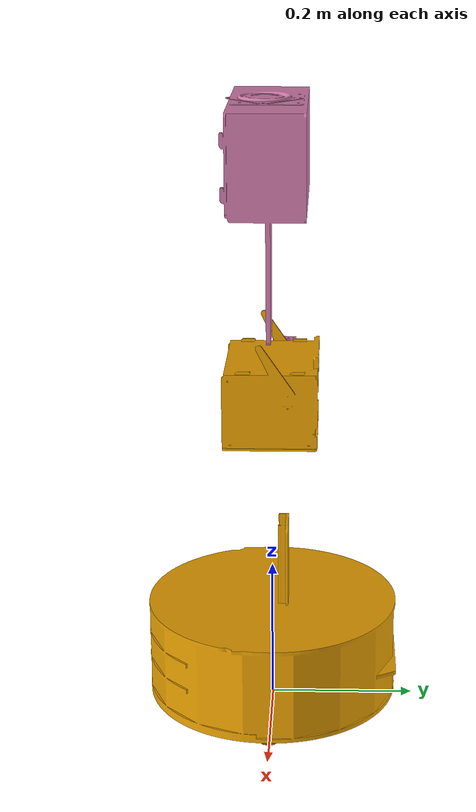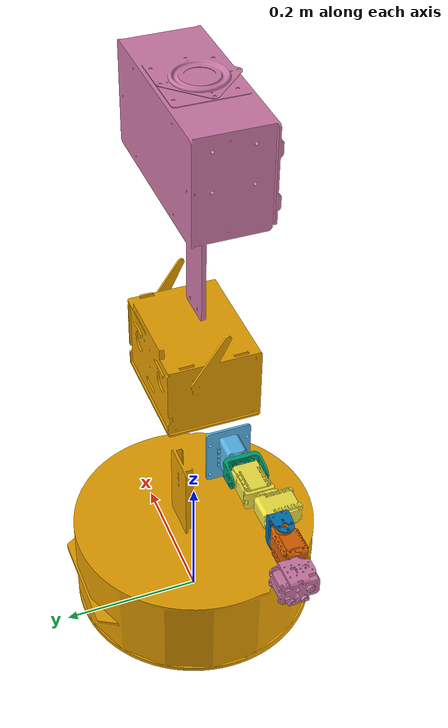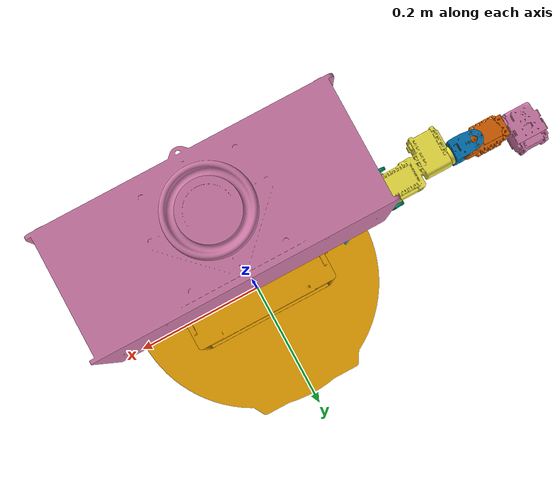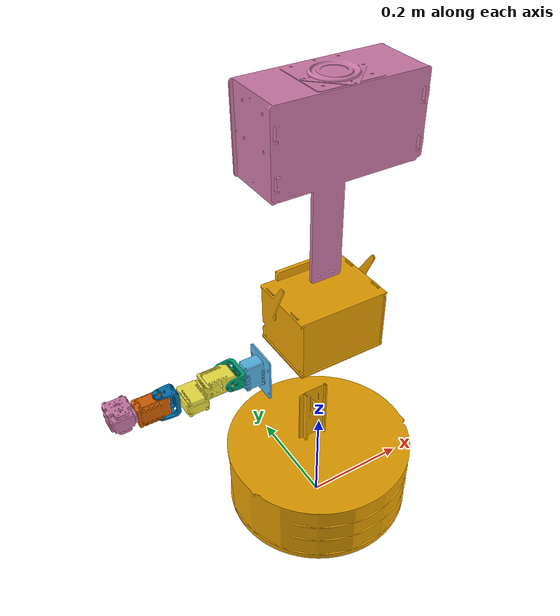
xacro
<?xml version="1.0"?>
<robot xmlns:xacro="http://www.ros.org/wiki/xacro" name="v2mini">

  <!-- v2mini body -->
  <include filename="$(find v2mini_description)/urdf/v2mini_body.urdf.xacro" />

  <!-- v2mini arm -->
  <include filename="$(find v2mini_description)/urdf/v2mini_arm.urdf.xacro" />

  <!-- v2mini head -->
  <include filename="$(find v2mini_description)/urdf/v2mini_head.urdf.xacro" />

  <!-- r200 sensor -->
  <include filename="$(find v2mini_description)/urdf/sensors/r200.urdf.xacro" />

 <!-- join the body with head -->
  <joint name="neckpan" type="revolute">
    <parent link="torso_link"/>
    <child link="neck_link"/>
    <axis xyz="0 0 1"/>
    <origin xyz="0 0 0"/>
    <limit effort="10" lower="-2.9" upper="2.9" velocity="10"/>
  </joint>

  <!-- join the body with arm -->
  <joint name="shoulder" type="fixed">
    <parent link="torso_link"/>
    <child link="arm_link1"/>
    <origin xyz="0 0 0" rpy="0 0 0"/>
  </joint>

  <xacro:body/>
  <xacro:head/>
  <xacro:arm/>

</robot>

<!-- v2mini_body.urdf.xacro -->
<robot xmlns:xacro="http://www.ros.org/wiki/xacro" name="v2mini">

<xacro:property name="pi" value="3.14159" />

<!-- base properties -->
<xacro:property name="base_offset_z" value="0.0192" />
<xacro:property name="base_collision_height" value="0.132" />
<xacro:property name="base_collision_radius" value="0.175" />

<!-- wheel properties -->
<xacro:property name="wheel_radius" value="0.03" />
<xacro:property name="wheel_offset_radial" value="0.1405" />

<!-- torso properties -->
<xacro:property name="torso_offset_z" value="0.425" />
<xacro:property name="torso_width" value="0.2373" />

<xacro:macro name="body">

  <!-- **** BASE **** -->

  <link name="base_link">
    <!-- fake inertial values -->
    <inertial>
      <mass value="10"/>
      <inertia ixx="100" ixy="0" ixz="0" iyy="100" iyz="0" izz="100" />
      <origin/>
    </inertial>
    <visual>
      <origin xyz="0 0 ${base_offset_z}" rpy="0 0 0" />
      <geometry>
        <mesh filename="package://v2mini_description/meshes/base/base.dae" />
      </geometry>
    </visual>
    <collision>
      <origin xyz="0 0 ${base_collision_height/2}" rpy="0 0 0" />
      <geometry>
        <cylinder length="${base_collision_height}" radius="${base_collision_radius}"/>
      </geometry>
    </collision>
  </link>

  <link name="base_footprint"/>

  <joint name="base_footprint_joint" type="fixed">
    <origin xyz="0 0 0" rpy="0 0 0"/>
    <parent link="base_footprint"/>
    <child link="base_link"/>
  </joint>

  <xacro:wheel prefix="front" reflect="-1" rotate="0" front_set="1"/>
  <xacro:wheel prefix="back" reflect="1" rotate="2" front_set="1"/>
  <xacro:wheel prefix="right" reflect="-1" rotate="-1" front_set="0"/>
  <xacro:wheel prefix="left" reflect="1" rotate="1" front_set="0"/>

  <!-- **** TORSO **** -->

  <link name="torso_link">
    <!-- fake inertial values -->
    <inertial>
      <mass value="5"/>
      <inertia ixx="100" ixy="0" ixz="0" iyy="100" iyz="0" izz="100" />
      <origin/>
    </inertial>
    <visual>
      <origin xyz="0 0 ${torso_offset_z}" rpy="0 0 0" />
      <geometry>
        <mesh filename="package://v2mini_description/meshes/torso/torso.dae" />
      </geometry>
    </visual>
  </link>

  <joint name="torso_slide" type="prismatic">
    <parent link="base_link"/>
    <child link="torso_link"/>
    <origin xyz="0 0 0"/>
    <axis xyz="0 0 1"/>
    <limit effort="10" lower="-0.09" upper="0" velocity="0.5"/>
  </joint>

</xacro:macro>

<!-- Macro for creating base wheels -->
<xacro:macro name="wheel" params="prefix reflect rotate front_set">

  <link name="${prefix}_wheel">
    <visual>
      <origin xyz="0 0 0" rpy="0 0 ${pi/2*rotate}"/>
      <geometry>
        <mesh filename="package://v2mini_description/meshes/base/base_wheel.dae" />
      </geometry>
    </visual>
     <inertial>
       <origin xyz="0 0 0" rpy="0 0 0"/>
       <mass value="1"/>
       <inertia ixx="1.0" ixy="0.0" ixz="0.0" iyy="1.0" iyz="0.0" izz="1.0"/>
    </inertial>
  </link>

  <joint name="${prefix}_axel" type="continuous">
    <parent link="base_link"/>
    <child link="${prefix}_wheel"/>
    <origin xyz="${wheel_offset_radial*reflect*(1-front_set)} ${wheel_offset_radial*reflect*front_set} ${wheel_radius}"/>
    <axis xyz="${1-front_set} ${front_set} 0"/>
  </joint>

</xacro:macro>

</robot>

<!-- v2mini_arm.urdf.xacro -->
<robot xmlns:xacro="http://www.ros.org/wiki/xacro" name="v2mini">

<xacro:property name="pi" value="3.14159" />

<xacro:property name="base_offsetx" value="-0.158825" />
<xacro:property name="base_offsety" value="-0.002" />
<xacro:property name="base_offsetz" value="0.407507" />

<xacro:macro name="arm">

  <link name="arm_link1">
    <visual>
      <origin xyz="0 0 0" rpy="0 0 0" />
      <geometry>
        <mesh filename="package://v2mini_description/meshes/arm/arm_link1.stl" />
      </geometry>
    </visual>
    <inertial>
       <origin xyz="0 0 0" rpy="0 0 0"/>
       <mass value="0.01"/>
       <inertia ixx="1.0" ixy="0.0" ixz="0.0" iyy="1.0" iyz="0.0" izz="1.0"/>
    </inertial>
  </link>

  <!-- first additional joint at offset -->

  <link name="arm_link2">
    <visual>
      <origin xyz="0 0 0" rpy="0 ${pi} 0" />
      <geometry>
        <mesh filename="package://v2mini_description/meshes/arm/arm_link2.stl" />
      </geometry>
    </visual>
   <inertial>
       <origin xyz="0 0 0" rpy="0 0 0"/>
       <mass value="0.01"/>
       <inertia ixx="1.0" ixy="0.0" ixz="0.0" iyy="1.0" iyz="0.0" izz="1.0"/>
    </inertial>
  </link>

  <joint name="arm_joint1" type="continuous">
    <parent link="arm_link1"/>
    <child link="arm_link2"/>
    <origin xyz="${base_offsetx} ${base_offsety} ${base_offsetz}" rpy="${pi} ${pi} 0"/>
    <limit effort="1000.0" lower="-0.2" upper="2.85" velocity="0.1"/>
  </joint>

  <xacro:arm_link num="3" par_num="2" axis="-1 0 0" offset="0.026 0 0" j_rpy="${pi/2} 0 ${3*pi/2}" l_rpy="0 ${-pi/2}  ${-pi/2}" limit_low="-0.3" limit_high="1.6"/>

  <xacro:arm_link num="4" par_num="3" axis="1 0 0" offset=" 0 0 -0.0855" j_rpy="0 ${pi/2} 0" l_rpy="${pi/2} ${pi}  0" limit_low="-3"  limit_high="3"/>

  <xacro:arm_link num="5" par_num="4" axis="-1 0 0" offset="0.026 0 0" j_rpy=" ${-pi/2} 0 ${pi/2}" l_rpy="${-pi/2} 0 ${-pi/2}" limit_low="-1.5" limit_high="1.5"/>

  <xacro:arm_link num="6" par_num="5" axis="-1 0 0" offset="0  0 -0.0415" j_rpy="${-pi/2} ${-pi/2} 0" l_rpy="${pi/2} ${pi/2} 0" limit_low="-3"  limit_high="3"/>

  <joint name="ee_joint" type="fixed">
      <parent link="arm_link6"/>
      <child link="ee_link"/>
      <origin xyz="0 0 0" rpy="0 0 0"/>
  </joint>

  <!-- Add end effector -->
  <link name="ee_link">
  <collision>
      <geometry>
          <box size="0.01 0.01 0.01"/>
      </geometry>
     <origin rpy="0 0 0" xyz="0 0 0"/>
  </collision>
   <inertial>
       <origin xyz="0 0 0" rpy="0 0 0"/>
       <mass value="1"/>
       <inertia ixx="1.0" ixy="0.0" ixz="0.0" iyy="1.0" iyz="0.0" izz="1.0"/>
    </inertial>
  </link>

</xacro:macro>

<!-- macro for the rest of the links -->
<xacro:macro name="arm_link" params="num par_num axis offset j_rpy l_rpy limit_low limit_high ">

  <link name="arm_link${num}">
    <visual>
      <origin xyz="0 0 0" rpy="${l_rpy}" />
      <geometry>
        <mesh filename="package://v2mini_description/meshes/arm/arm_link${num}.stl" />
      </geometry>
    </visual>
    <inertial>
       <origin xyz="0 0 0" rpy="0 0 0"/>
       <mass value="0.01"/>
       <inertia ixx="1.0" ixy="0.0" ixz="0.0" iyy="1.0" iyz="0.0" izz="1.0"/>
    </inertial>
  </link>

  <joint name="arm_joint${par_num}" type="revolute">
    <parent link="arm_link${par_num}"/>
    <child link="arm_link${num}"/>
    <origin xyz="${offset}" rpy="${j_rpy}"/>
    <axis xyz="${axis}"/>
    <limit effort="1000.0" lower="${limit_low}" upper="${limit_high}" velocity="0.1"/>
  </joint>

</xacro:macro>

</robot>

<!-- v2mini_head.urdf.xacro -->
<robot xmlns:xacro="http://www.ros.org/wiki/xacro" name="v2mini">

<xacro:property name="head_offset_z" value="0.427" />

<xacro:macro name="head">

  <link name="neck_link">
    <visual>
      <origin xyz="0 0 0.42" rpy="0 0 0" />
      <geometry>
        <mesh filename="package://v2mini_description/meshes/head/neck.dae" />
      </geometry>
    </visual>
     <inertial>
       <origin xyz="0 0 0" rpy="0 0 0"/>
       <mass value="1"/>
       <inertia ixx="1.0" ixy="0.0" ixz="0.0" iyy="1.0" iyz="0.0" izz="1.0"/>
    </inertial>
  </link>

  <link name="head_link">
    <visual>
      <origin xyz="0 0 0" rpy="0 0 0" />
      <geometry>
        <mesh filename="package://v2mini_description/meshes/head/head.dae" />
       </geometry>
    </visual>
     <inertial>
       <origin xyz="0 0 0" rpy="0 0 0"/>
       <mass value="1"/>
       <inertia ixx="1.0" ixy="0.0" ixz="0.0" iyy="1.0" iyz="0.0" izz="1.0"/>
    </inertial>
    <collision>
     <origin xyz="0 0 0" rpy="0 0 0"/>
     <geometry>
        <box size="0 0 0"/>
     </geometry>
    </collision>
  </link>

  <joint name="neck_tilt" type="revolute">
    <parent link="neck_link"/>
    <child link="head_link"/>
    <axis xyz="1 0 0"/>
    <origin xyz="0 0 ${head_offset_z}" rpy="0 0 3.14"/>
    <limit effort="1000.0" lower="-0.5" upper="0.3" velocity="0.1"/>
  </joint>

  <!-- Attach R200 -->

</xacro:macro>

</robot>
